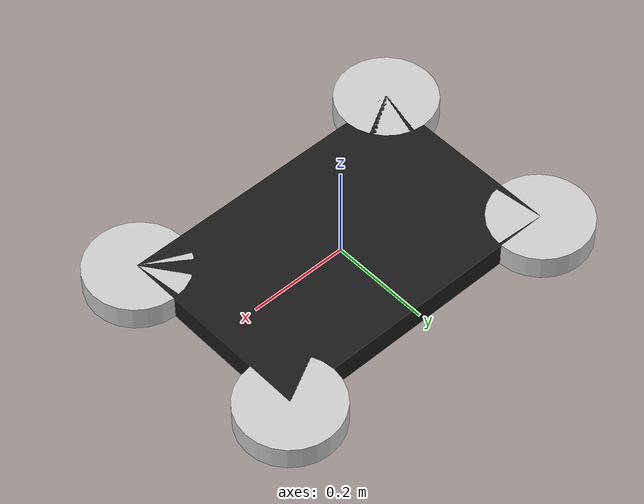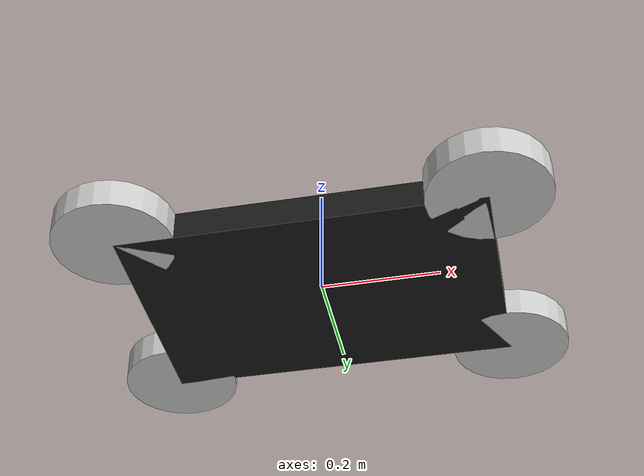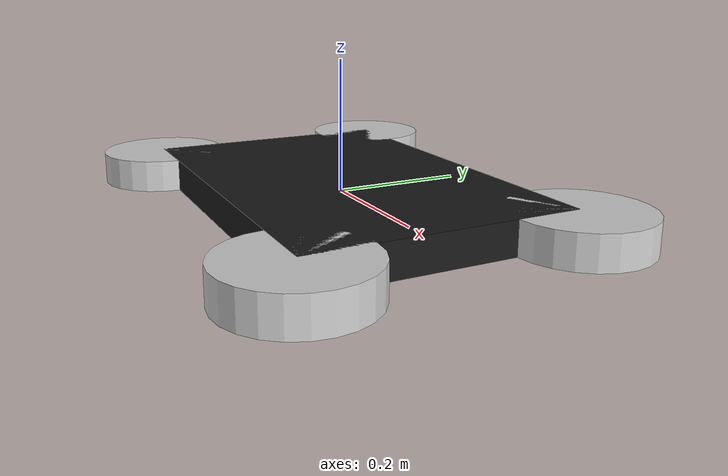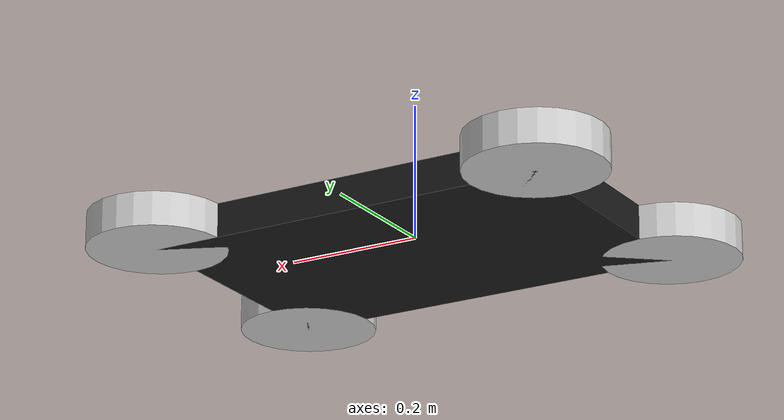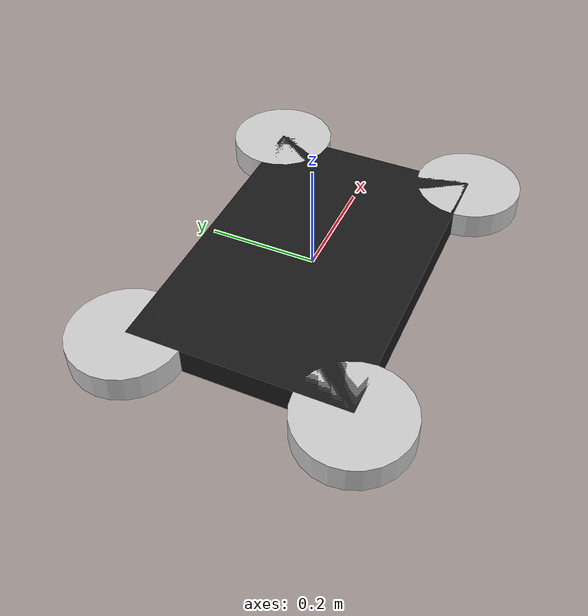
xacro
<?xml version="1.0"?>
<robot name="aerial_drone" xmlns:xacro="http://ros.org/wiki/xacro">
  <!-- Include common macros and motor definition -->
  <xacro:include filename="$(find aerial_drone_base)/urdf/common_macro.xacro"/>
  <xacro:include filename="$(find aerial_drone_base)/urdf/motor.xacro"/>

  <!-- Drone parameters -->
  <xacro:property name="body_mass" value="1.5"/>
  <xacro:property name="body_length" value="0.6"/>
  <xacro:property name="body_width" value="0.4"/>
  <xacro:property name="body_height" value="0.05"/>
  <xacro:property name="body_color" value="0.1 0.1 0.1 1"/>

  <xacro:property name="motor_mass" value="0.1"/>
  <xacro:property name="motor_radius" value="0.1"/>
  <xacro:property name="motor_length" value="0.05"/>
  <xacro:property name="motor_color" value="0.8 0.8 0.8 1"/>

  <xacro:property name="motor_offset_x" value="${body_length / 2}"/>
  <xacro:property name="motor_offset_y" value="${body_width / 2}"/>

  <!-- Joint parameters -->
  <xacro:property name="joint_limit" value="1.57"/>
  <xacro:property name="joint_effort" value="1000"/>
  <xacro:property name="joint_velocity" value="10"/>

  <!-- Main body link -->

  <link name="dummy_link">
    <!-- Нет инерционных параметров для dummy_link -->
  </link>

  <joint name="dummy_to_base" type="fixed">
    <parent link="dummy_link"/>
    <child link="base_link"/>
    <origin xyz="0 0 0" rpy="0 0 0"/>
  </joint>

  <link name="base_link">
    <visual>
      <geometry>
        <box size="${body_length} ${body_width} ${body_height}"/>
      </geometry>
      <material name="base_material">
        <color rgba="${body_color}"/>
      </material>
    </visual>
    <collision>
      <geometry>
        <box size="${body_length} ${body_width} ${body_height}"/>
      </geometry>
    </collision>
    <xacro:inertial_box mass="${body_mass}" x="${body_length}" y="${body_width}" z="${body_height}"/>
  </link>

  <!-- Roll joint -->
  <joint name="roll_joint" type="revolute">
    <parent link="base_link"/>
    <child link="roll_frame"/>
    <origin xyz="0 0 0.05" rpy="0 0 0"/>
    <axis xyz="1 0 0"/>
    <limit lower="-${joint_limit}" upper="${joint_limit}" effort="${joint_effort}" velocity="${joint_velocity}"/>
  </joint>

  <link name="roll_frame">
    <xacro:inertial_cylinder mass="0.01" length="0.01" radius="0.01"/>
  </link>

  <!-- Pitch joint -->
  <joint name="pitch_joint" type="revolute">
    <parent link="roll_frame"/>
    <child link="pitch_frame"/>
    <origin xyz="0 0 0" rpy="0 0 0"/>
    <axis xyz="0 1 0"/>
    <limit lower="-${joint_limit}" upper="${joint_limit}" effort="${joint_effort}" velocity="${joint_velocity}"/>
  </joint>

  <link name="pitch_frame">
    <xacro:inertial_cylinder mass="0.01" length="0.01" radius="0.01"/>
  </link>

  <!-- Mounting motors with calculated positions -->
  <xacro:motor name="front_right_motor" mass="${motor_mass}" length="${motor_length}" radius="${motor_radius}" color="${motor_color}" origin="${motor_offset_x} ${motor_offset_y} 0"/>
  <xacro:motor name="front_left_motor" mass="${motor_mass}" length="${motor_length}" radius="${motor_radius}" color="${motor_color}" origin="-${motor_offset_x} ${motor_offset_y} 0"/>
  <xacro:motor name="rear_left_motor" mass="${motor_mass}" length="${motor_length}" radius="${motor_radius}" color="${motor_color}" origin="-${motor_offset_x} -${motor_offset_y} 0"/>
  <xacro:motor name="rear_right_motor" mass="${motor_mass}" length="${motor_length}" radius="${motor_radius}" color="${motor_color}" origin="${motor_offset_x} -${motor_offset_y} 0"/>

  <gazebo>
    <plugin name="ros_gz_control" filename="libros_gz_control.so">
        <robotNamespace>/</robotNamespace>
    </plugin>
  </gazebo>

  <gazebo>
    <plugin name="mavlink_interface" filename="libgazebo_mavlink_interface.so">
        <robotNamespace>/</robotNamespace>
        <port>14560</port> <!-- Указать порт, который используется PX4 -->
    </plugin>
  </gazebo>

</robot>

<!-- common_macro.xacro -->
<robot name="dron_macro" xmlns:xacro="http://www.ros.org/wiki/xacro">

<!-- Macro for cylinder inertial model -->
<xacro:macro name="cylinder_inertia" params ="m r h">
  <inertial>
   <mass value="${m}"/> <!-- Cylinder mass -->
   <!-- Formulas to calculate inertia moments for cylinder -->
   <inertia ixx="${m*(3*r*r+h*h)/12}"  ixy="0.0" ixz="0.0"
            iyy="${m*(3*r*r+h*h)/12}"  iyz="0.0" izz="${m*r*r/2}"/>
   </inertial>
</xacro:macro>

<!-- Macro for base inertial model -->
<xacro:macro name= "inertial_matrix" params="mass">
  <inertial>
    <mass value="${mass}"/> <!-- Base mass -->
    <!-- Set identity matrix for inertia moments -->
    <inertia
        ixx="1.0" ixy="0.0"
        iyy="1.0" iyz="0.0"
        izz="1.0" ixz="0.0"/>
   </inertial>
 </xacro:macro>

<!-- Macro for sphere inertial model -->
<xacro:macro name="inertial_sphere" params="mass radius">
    <inertial>
        <mass value="${mass}" />
        <inertia ixx="${(2/5) * mass * (radius*radius)}" ixy="0.0" ixz="0.0"
                iyy="${(2/5) * mass * (radius*radius)}" iyz="0.0"
                izz="${(2/5) * mass * (radius*radius)}" />
    </inertial>
</xacro:macro>

<xacro:macro name="inertial_box" params="mass x y z">
    <inertial>
        <mass value="${mass}" />
        <inertia ixx="${(1/12) * mass * (y*y+z*z)}" ixy="0.0" ixz="0.0"
                iyy="${(1/12) * mass * (x*x+z*z)}" iyz="0.0"
                izz="${(1/12) * mass * (x*x+y*y)}" />
    </inertial>
</xacro:macro>

<xacro:macro name="inertial_cylinder" params="mass length radius">
    <inertial>
        <mass value="${mass}" />
        <inertia ixx="${(1/12) * mass * (3*radius*radius + length*length)}" ixy="0.0" ixz="0.0"
                iyy="${(1/12) * mass * (3*radius*radius + length*length)}" iyz="0.0"
                izz="${(1/2) * mass * (radius*radius)}" />
    </inertial>
</xacro:macro>

</robot>

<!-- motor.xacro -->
<robot name="motor" xmlns:xacro="http://ros.org/wiki/xacro">
  <xacro:include filename="$(find aerial_drone_base)/urdf/common_macro.xacro"/>

  <!-- Motor macro with joint -->
  <xacro:macro name="motor" params="name mass length radius color origin">
    <!-- Joint for motor rotation -->
    <joint name="${name}_joint" type="continuous">
      <origin xyz="${origin}" rpy="0 0 0"/> <!-- Set origin, roll-pitch-yaw remains zero -->
      <parent link="base_link"/>
      <child link="${name}_link"/>
      <axis xyz="0 0 1"/> <!-- Assuming rotation around z-axis -->
      <limit effort="0" velocity="0"/> <!-- No limit on velocity or effort -->
    </joint>

    <!-- Motor link -->
    <link name="${name}_link">
      <visual>
        <origin xyz="0 0 0" rpy="0 0 0"/>
        <geometry>
          <cylinder radius="${radius}" length="${length}"/>
        </geometry>
        <material name='motor_material'>
          <color rgba="${color}"/>
        </material>
      </visual>
      <collision>
        <origin xyz="0 0 0" rpy="0 0 0"/>
        <geometry>
          <cylinder radius="${radius}" length="${length}"/>
        </geometry>
      </collision>
      <xacro:inertial_cylinder mass="${mass}" length="${length}" radius="${radius}"/>
    </link>
  </xacro:macro>
</robot>
